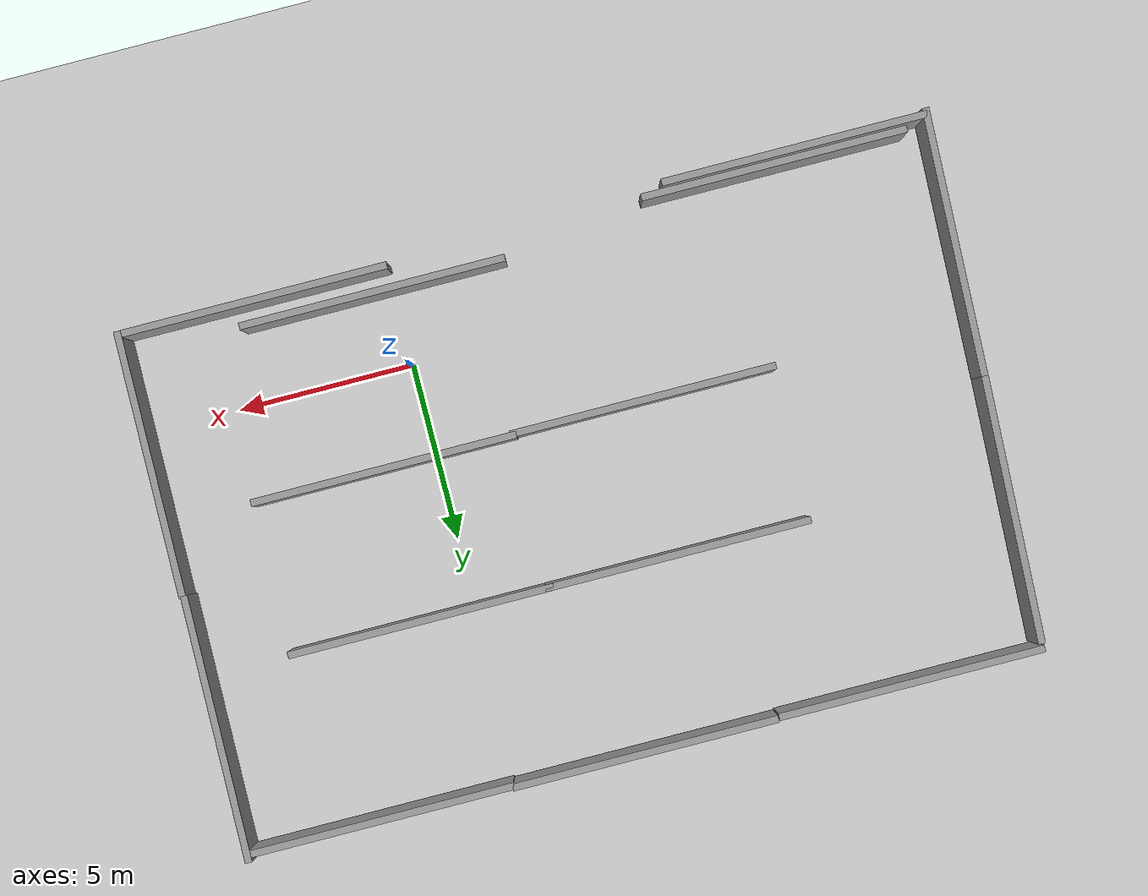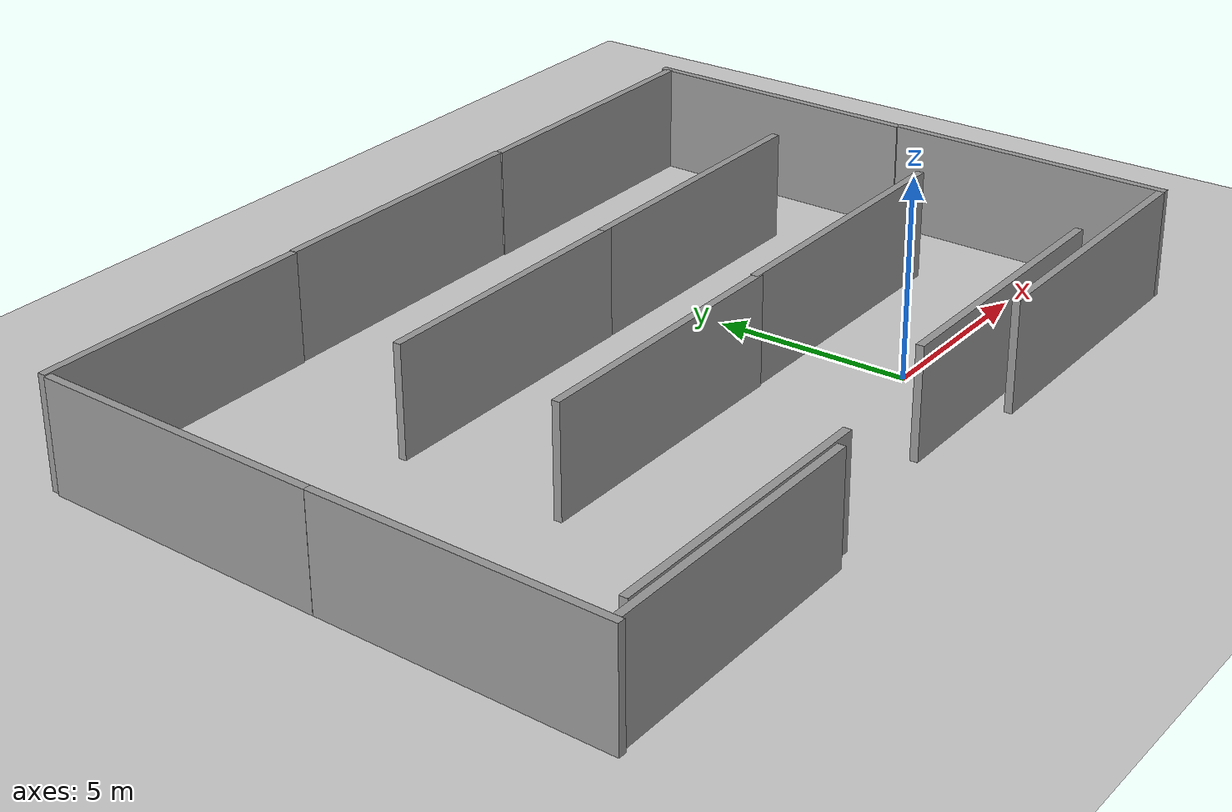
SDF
<sdf version="1.7">
 <world name="default">
  <light name="sun" type="directional">
   <pose>0 0 10 0 -0 0</pose>
   <diffuse>0.8 0.8 0.8 1</diffuse>
   <specular>0.2 0.2 0.2 1</specular>
   <attenuation>
    <range>1000</range>
    <constant>0.9</constant>
    <linear>0.01</linear>
    <quadratic>0.001</quadratic>
   </attenuation>
   <direction>-0.5 0.1 -0.9</direction>
   <spot><inner_angle>0</inner_angle><outer_angle>0</outer_angle><falloff>0</falloff></spot>
  </light>
  <model name="ground_plane">
   <static>1</static>
   <link name="link">
    <collision name="collision">
     <geometry><plane><normal>0 0 1</normal><size>100 100</size></plane></geometry>
     <surface>
      <contact><collide_bitmask>65535</collide_bitmask></contact>
      <friction><ode><mu>100</mu><mu2>50</mu2></ode></friction>
     </surface>
    </collision>
    <visual name="visual">
     <cast_shadows>0</cast_shadows>
     <geometry><plane><normal>0 0 1</normal><size>100 100</size></plane></geometry>
     <material>
      <script><uri>file://media/materials/scripts/gazebo.material</uri><name>Gazebo/Grey</name></script>
     </material>
    </visual>
   </link>
  </model>
  <gravity>0 0 -9.8</gravity>
  <magnetic_field>6e-06 2.3e-05 -4.2e-05</magnetic_field>
  <atmosphere type="adiabatic"/>
  <physics type="ode">
   <max_step_size>0.001</max_step_size>
   <real_time_factor>1</real_time_factor>
   <real_time_update_rate>1000</real_time_update_rate>
  </physics>
  <scene><ambient>0.4 0.4 0.4 1</ambient><background>0.7 0.7 0.7 1</background><shadows>1</shadows></scene>
  <audio><device>default</device></audio>
  <spherical_coordinates>
   <surface_model>EARTH_WGS84</surface_model>
   <latitude_deg>0</latitude_deg>
   <longitude_deg>0</longitude_deg>
   <elevation>0</elevation>
   <heading_deg>0</heading_deg>
  </spherical_coordinates>
  <model name="grey_wall">
   <static>1</static>
   <link name="link">
    <pose>0 0 1.4 0 -0 0</pose>
    <collision name="collision"><geometry><box><size>7.5 0.2 2.8</size></box></geometry></collision>
    <visual name="visual">
     <cast_shadows>0</cast_shadows>
     <geometry><box><size>7.5 0.2 2.8</size></box></geometry>
     <material>
      <script>
       <uri>model://grey_wall/materials/scripts</uri>
       <uri>model://grey_wall/materials/textures</uri>
       <name>vrc/grey_wall</name>
      </script>
     </material>
    </visual>
   </link>
   <pose>0.490919 -2.12103 0 0 -0 0</pose>
  </model>
  <model name="grey_wall_clone">
   <static>1</static>
   <link name="link">
    <pose>0 0 1.4 0 -0 0</pose>
    <collision name="collision"><geometry><box><size>7.5 0.2 2.8</size></box></geometry></collision>
    <visual name="visual">
     <cast_shadows>0</cast_shadows>
     <geometry><box><size>7.5 0.2 2.8</size></box></geometry>
     <material>
      <script>
       <uri>model://grey_wall/materials/scripts</uri>
       <uri>model://grey_wall/materials/textures</uri>
       <name>vrc/grey_wall</name>
      </script>
     </material>
    </visual>
   </link>
   <pose>7.55153 0.921762 0 0 -0 1.55913</pose>
  </model>
  <model name="grey_wall_clone_0">
   <static>1</static>
   <link name="link">
    <pose>0 0 1.4 0 -0 0</pose>
    <collision name="collision"><geometry><box><size>7.5 0.2 2.8</size></box></geometry></collision>
    <visual name="visual">
     <cast_shadows>0</cast_shadows>
     <geometry><box><size>7.5 0.2 2.8</size></box></geometry>
     <material>
      <script>
       <uri>model://grey_wall/materials/scripts</uri>
       <uri>model://grey_wall/materials/textures</uri>
       <name>vrc/grey_wall</name>
      </script>
     </material>
    </visual>
   </link>
   <pose>-11.0254 -2.77446 0 0 -0 0</pose>
  </model>
  <model name="grey_wall_clone_1">
   <static>1</static>
   <link name="link">
    <pose>0 0 1.4 0 -0 0</pose>
    <collision name="collision"><geometry><box><size>7.5 0.2 2.8</size></box></geometry></collision>
    <visual name="visual">
     <cast_shadows>0</cast_shadows>
     <geometry><box><size>7.5 0.2 2.8</size></box></geometry>
     <material>
      <script>
       <uri>model://grey_wall/materials/scripts</uri>
       <uri>model://grey_wall/materials/textures</uri>
       <name>vrc/grey_wall</name>
      </script>
     </material>
    </visual>
   </link>
   <pose>3.66144 -2.73289 0 0 -0 0</pose>
  </model>
  <model name="grey_wall_clone_2">
   <static>1</static>
   <link name="link">
    <pose>0 0 1.4 0 -0 0</pose>
    <collision name="collision"><geometry><box><size>7.5 0.2 2.8</size></box></geometry></collision>
    <visual name="visual">
     <cast_shadows>0</cast_shadows>
     <geometry><box><size>7.5 0.2 2.8</size></box></geometry>
     <material>
      <script>
       <uri>model://grey_wall/materials/scripts</uri>
       <uri>model://grey_wall/materials/textures</uri>
       <name>vrc/grey_wall</name>
      </script>
     </material>
    </visual>
   </link>
   <pose>7.60517 8.37923 0 0 0 -1.58504</pose>
  </model>
  <model name="grey_wall_clone_3">
   <static>1</static>
   <link name="link">
    <pose>0 0 1.4 0 -0 0</pose>
    <collision name="collision"><geometry><box><size>7.5 0.2 2.8</size></box></geometry></collision>
    <visual name="visual">
     <cast_shadows>0</cast_shadows>
     <geometry><box><size>7.5 0.2 2.8</size></box></geometry>
     <material>
      <script>
       <uri>model://grey_wall/materials/scripts</uri>
       <uri>model://grey_wall/materials/textures</uri>
       <name>vrc/grey_wall</name>
      </script>
     </material>
    </visual>
   </link>
   <pose>-11.1086 11.915 0 0 -0 0</pose>
  </model>
  <model name="grey_wall_clone_0_clone">
   <static>1</static>
   <link name="link">
    <pose>0 0 1.4 0 -0 0</pose>
    <collision name="collision"><geometry><box><size>7.5 0.2 2.8</size></box></geometry></collision>
    <visual name="visual">
     <cast_shadows>0</cast_shadows>
     <geometry><box><size>7.5 0.2 2.8</size></box></geometry>
     <material>
      <script>
       <uri>model://grey_wall/materials/scripts</uri>
       <uri>model://grey_wall/materials/textures</uri>
       <name>vrc/grey_wall</name>
      </script>
     </material>
    </visual>
   </link>
   <pose>-3.58859 11.951 0 0 -0 0</pose>
  </model>
  <model name="grey_wall_clone_0_clone_0">
   <static>1</static>
   <link name="link">
    <pose>0 0 1.4 0 -0 0</pose>
    <collision name="collision"><geometry><box><size>7.5 0.2 2.8</size></box></geometry></collision>
    <visual name="visual">
     <cast_shadows>0</cast_shadows>
     <geometry><box><size>7.5 0.2 2.8</size></box></geometry>
     <material>
      <script>
       <uri>model://grey_wall/materials/scripts</uri>
       <uri>model://grey_wall/materials/textures</uri>
       <name>vrc/grey_wall</name>
      </script>
     </material>
    </visual>
   </link>
   <pose>3.87162 11.9133 0 0 -0 0</pose>
  </model>
  <model name="grey_wall_clone_0_clone_1">
   <static>1</static>
   <link name="link">
    <pose>0 0 1.4 0 -0 0</pose>
    <collision name="collision"><geometry><box><size>7.5 0.2 2.8</size></box></geometry></collision>
    <visual name="visual">
     <cast_shadows>0</cast_shadows>
     <geometry><box><size>7.5 0.2 2.8</size></box></geometry>
     <material>
      <script>
       <uri>model://grey_wall/materials/scripts</uri>
       <uri>model://grey_wall/materials/textures</uri>
       <name>vrc/grey_wall</name>
      </script>
     </material>
    </visual>
   </link>
   <pose>-14.975 8.02502 0 0 0 -1.61409</pose>
  </model>
  <model name="grey_wall_clone_0_clone_1_clone">
   <static>1</static>
   <link name="link">
    <pose>0 0 1.4 0 -0 0</pose>
    <collision name="collision"><geometry><box><size>7.5 0.2 2.8</size></box></geometry></collision>
    <visual name="visual">
     <cast_shadows>0</cast_shadows>
     <geometry><box><size>7.5 0.2 2.8</size></box></geometry>
     <material>
      <script>
       <uri>model://grey_wall/materials/scripts</uri>
       <uri>model://grey_wall/materials/textures</uri>
       <name>vrc/grey_wall</name>
      </script>
     </material>
    </visual>
   </link>
   <pose>-15.2672 0.54944 0 0 0 -1.60671</pose>
  </model>
  <model name="grey_wall_clone_0_clone_1_clone_0">
   <static>1</static>
   <link name="link">
    <pose>0 0 1.4 0 -0 0</pose>
    <collision name="collision"><geometry><box><size>7.5 0.2 2.8</size></box></geometry></collision>
    <visual name="visual">
     <cast_shadows>0</cast_shadows>
     <geometry><box><size>7.5 0.2 2.8</size></box></geometry>
     <material>
      <script>
       <uri>model://grey_wall/materials/scripts</uri>
       <uri>model://grey_wall/materials/textures</uri>
       <name>vrc/grey_wall</name>
      </script>
     </material>
    </visual>
   </link>
   <pose>-11.6649 -3.03047 0 0 -0 0</pose>
  </model>
  <model name="grey_wall_clone_1_clone">
   <static>1</static>
   <link name="link">
    <pose>0 0 1.4 0 -0 0</pose>
    <collision name="collision"><geometry><box><size>7.5 0.2 2.8</size></box></geometry></collision>
    <visual name="visual">
     <cast_shadows>0</cast_shadows>
     <geometry><box><size>7.5 0.2 2.8</size></box></geometry>
     <material>
      <script>
       <uri>model://grey_wall/materials/scripts</uri>
       <uri>model://grey_wall/materials/textures</uri>
       <name>vrc/grey_wall</name>
      </script>
     </material>
    </visual>
   </link>
   <pose>1.45927 6.91499 0 0 -0 0</pose>
  </model>
  <model name="grey_wall_clone_1_clone_0">
   <static>1</static>
   <link name="link">
    <pose>0 0 1.4 0 -0 0</pose>
    <collision name="collision"><geometry><box><size>7.5 0.2 2.8</size></box></geometry></collision>
    <visual name="visual">
     <cast_shadows>0</cast_shadows>
     <geometry><box><size>7.5 0.2 2.8</size></box></geometry>
     <material>
      <script>
       <uri>model://grey_wall/materials/scripts</uri>
       <uri>model://grey_wall/materials/textures</uri>
       <name>vrc/grey_wall</name>
      </script>
     </material>
    </visual>
   </link>
   <pose>-5.8106 6.90896 0 0 -0 0</pose>
  </model>
  <model name="grey_wall_clone_1_clone_1">
   <static>1</static>
   <link name="link">
    <pose>0 0 1.4 0 -0 0</pose>
    <collision name="collision"><geometry><box><size>7.5 0.2 2.8</size></box></geometry></collision>
    <visual name="visual">
     <cast_shadows>0</cast_shadows>
     <geometry><box><size>7.5 0.2 2.8</size></box></geometry>
     <material>
      <script>
       <uri>model://grey_wall/materials/scripts</uri>
       <uri>model://grey_wall/materials/textures</uri>
       <name>vrc/grey_wall</name>
      </script>
     </material>
    </visual>
   </link>
   <pose>1.39919 2.63441 0 0 -0 0</pose>
  </model>
  <model name="grey_wall_clone_1_clone_2">
   <static>1</static>
   <link name="link">
    <pose>0 0 1.4 0 -0 0</pose>
    <collision name="collision"><geometry><box><size>7.5 0.2 2.8</size></box></geometry></collision>
    <visual name="visual">
     <cast_shadows>0</cast_shadows>
     <geometry><box><size>7.5 0.2 2.8</size></box></geometry>
     <material>
      <script>
       <uri>model://grey_wall/materials/scripts</uri>
       <uri>model://grey_wall/materials/textures</uri>
       <name>vrc/grey_wall</name>
      </script>
     </material>
    </visual>
   </link>
   <pose>-5.93964 2.5941 0 0 -0 0</pose>
  </model>
 </world>
</sdf>
